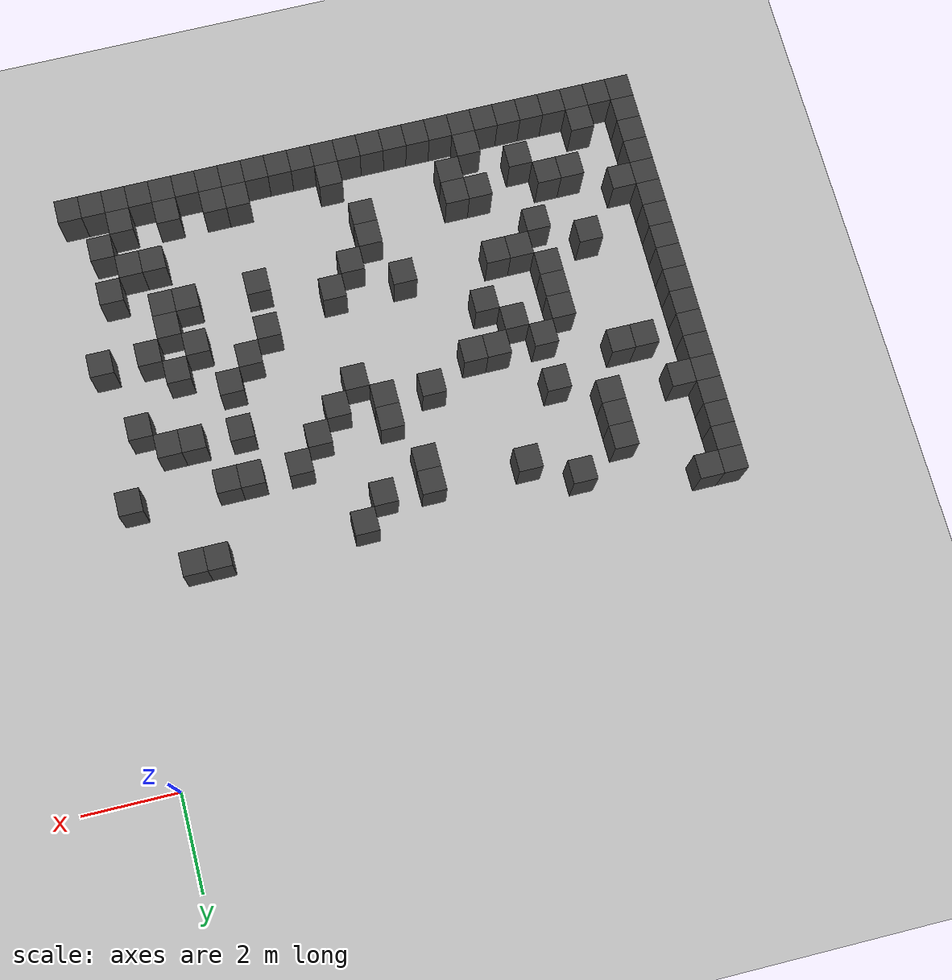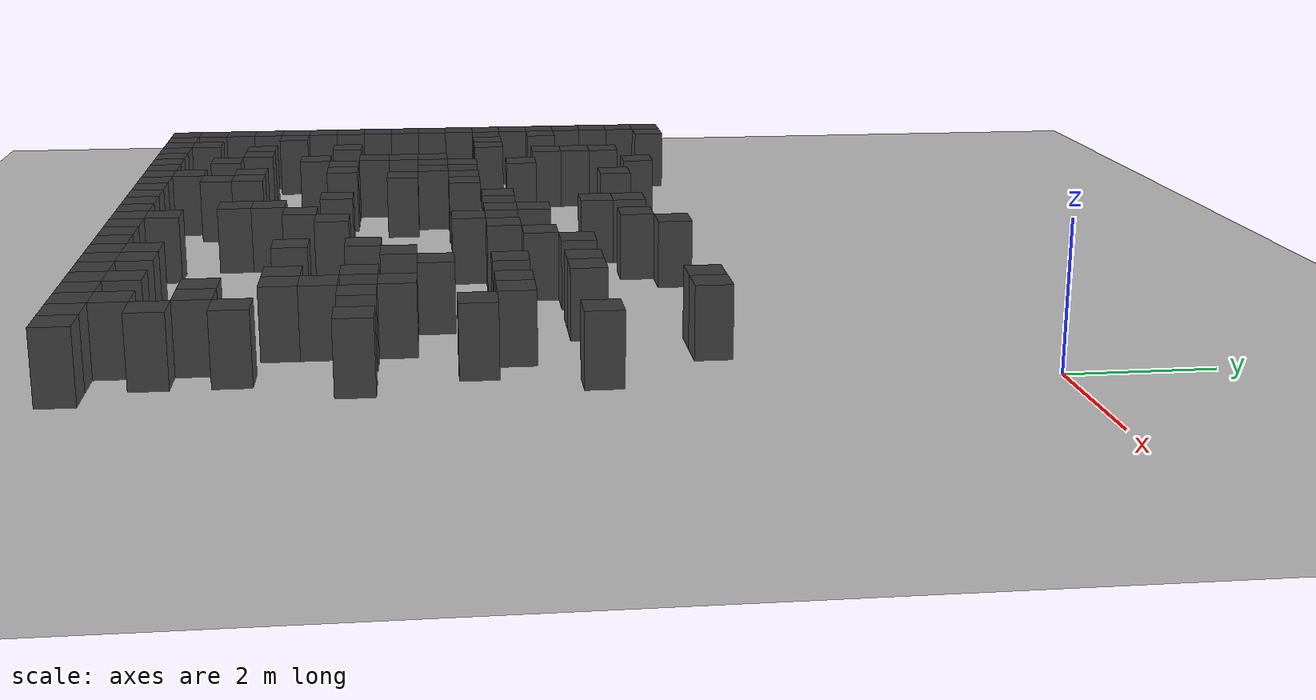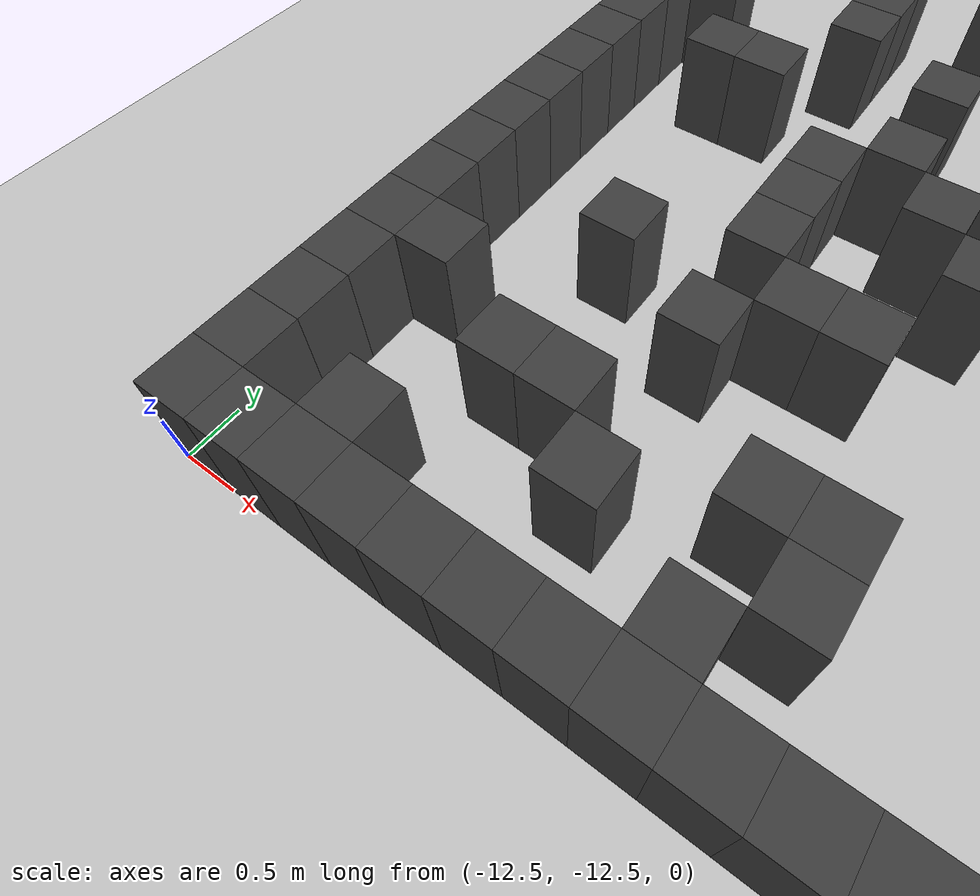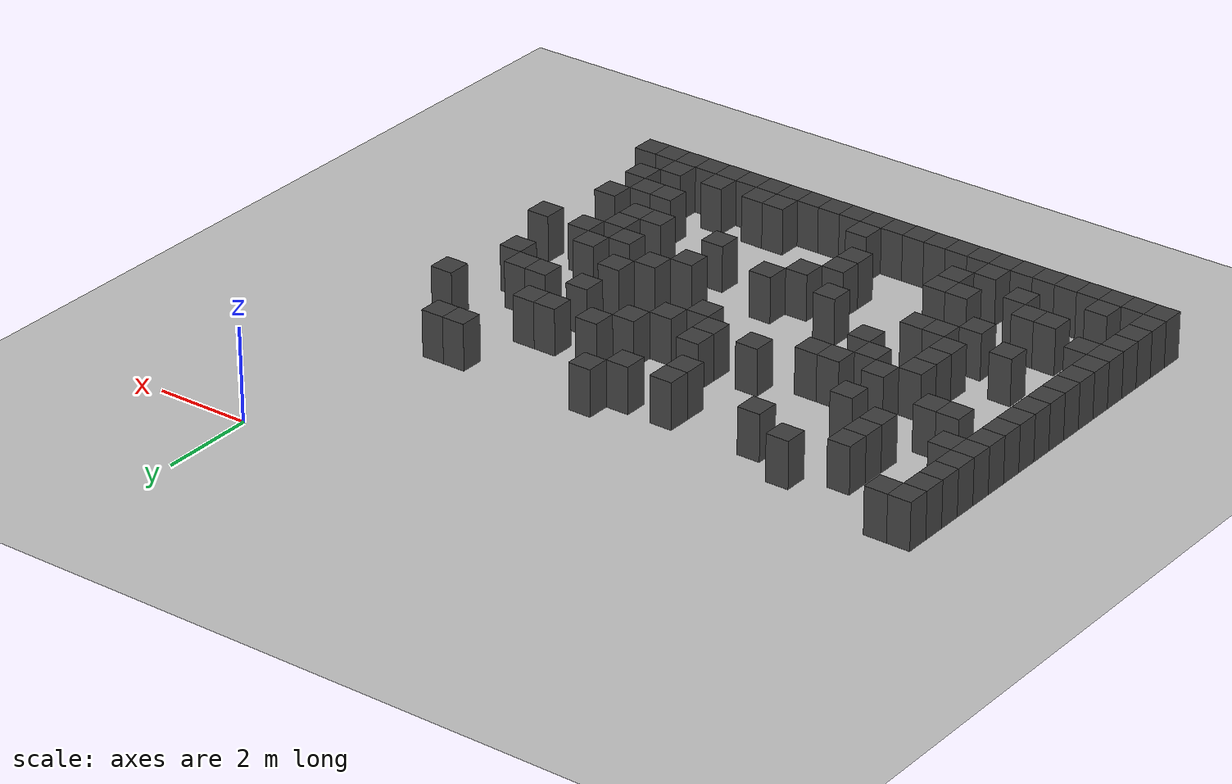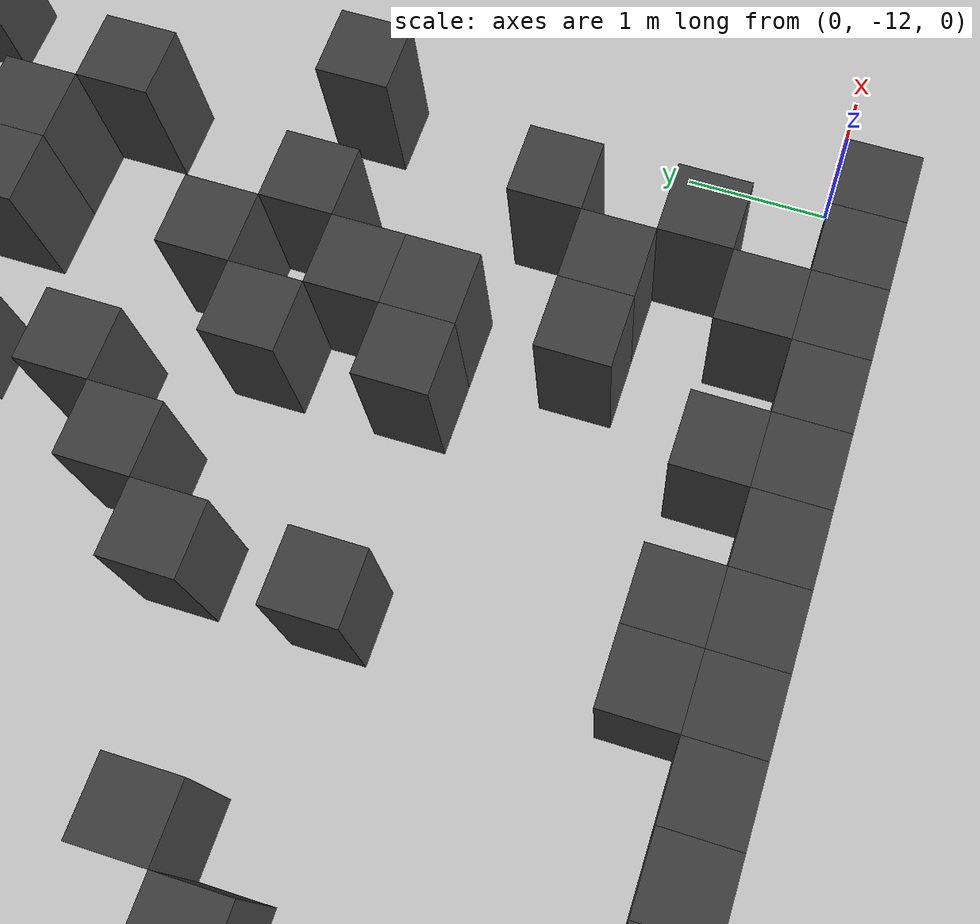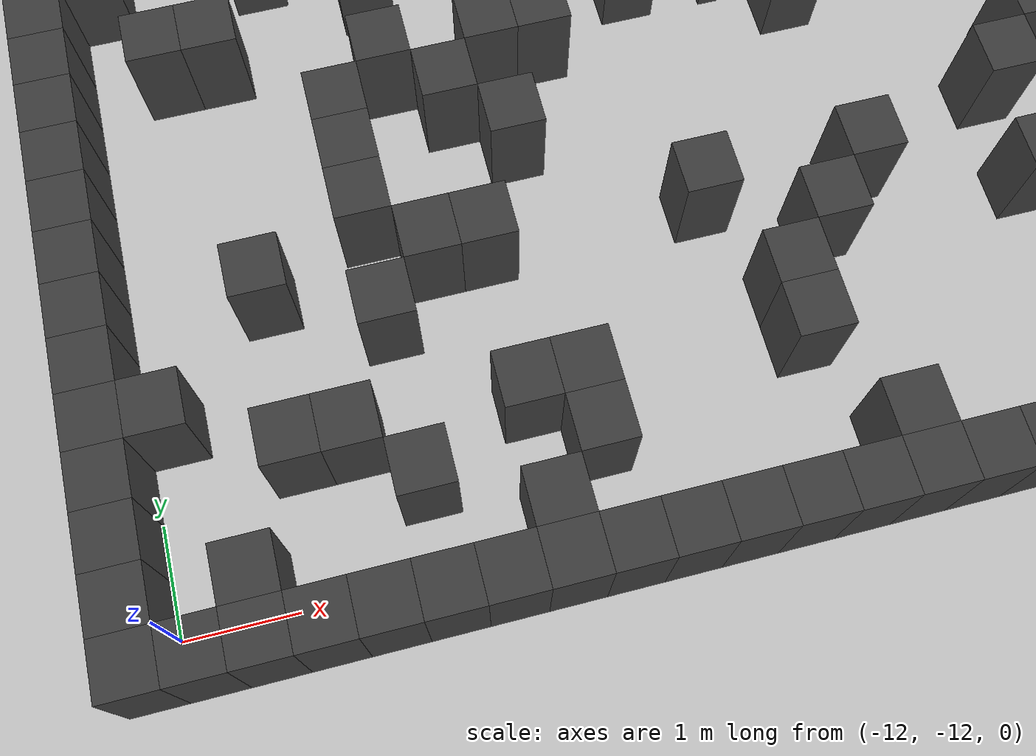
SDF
<sdf version="1.7">
 <world name="map_4682">
  <model name="ground_plane">
   <static>true</static>
   <link name="link">
    <collision name="collision">
     <geometry><plane><normal>0 0 1</normal><size>200 200</size></plane></geometry>
    </collision>
    <visual name="visual">
     <geometry><plane><normal>0 0 1</normal><size>200 200</size></plane></geometry>
     <material><ambient>0.8 0.8 0.8 1</ambient><diffuse>0.8 0.8 0.8 1</diffuse></material>
    </visual>
   </link>
  </model>
  <model name="maze_environment">
   <static>true</static>
   <link name="wall_447">
    <pose>-12.250 -3.750 0.500 0 0 0</pose>
    <collision name="col"><geometry><box><size>0.5 0.5 1.0</size></box></geometry></collision>
    <visual name="vis">
     <geometry><box><size>0.5 0.5 1.0</size></box></geometry>
     <material><ambient>0.15 0.15 0.15 1</ambient><diffuse>0.25 0.25 0.25 1</diffuse></material>
    </visual>
   </link>
   <link name="wall_448">
    <pose>-11.750 -3.750 0.500 0 0 0</pose>
    <collision name="col"><geometry><box><size>0.5 0.5 1.0</size></box></geometry></collision>
    <visual name="vis">
     <geometry><box><size>0.5 0.5 1.0</size></box></geometry>
     <material><ambient>0.15 0.15 0.15 1</ambient><diffuse>0.25 0.25 0.25 1</diffuse></material>
    </visual>
   </link>
   <link name="wall_467">
    <pose>-12.250 -4.250 0.500 0 0 0</pose>
    <collision name="col"><geometry><box><size>0.5 0.5 1.0</size></box></geometry></collision>
    <visual name="vis">
     <geometry><box><size>0.5 0.5 1.0</size></box></geometry>
     <material><ambient>0.15 0.15 0.15 1</ambient><diffuse>0.25 0.25 0.25 1</diffuse></material>
    </visual>
   </link>
   <link name="wall_468">
    <pose>-9.250 -4.250 0.500 0 0 0</pose>
    <collision name="col"><geometry><box><size>0.5 0.5 1.0</size></box></geometry></collision>
    <visual name="vis">
     <geometry><box><size>0.5 0.5 1.0</size></box></geometry>
     <material><ambient>0.15 0.15 0.15 1</ambient><diffuse>0.25 0.25 0.25 1</diffuse></material>
    </visual>
   </link>
   <link name="wall_469">
    <pose>-4.750 -4.250 0.500 0 0 0</pose>
    <collision name="col"><geometry><box><size>0.5 0.5 1.0</size></box></geometry></collision>
    <visual name="vis">
     <geometry><box><size>0.5 0.5 1.0</size></box></geometry>
     <material><ambient>0.15 0.15 0.15 1</ambient><diffuse>0.25 0.25 0.25 1</diffuse></material>
    </visual>
   </link>
   <link name="wall_470">
    <pose>-1.750 -4.250 0.500 0 0 0</pose>
    <collision name="col"><geometry><box><size>0.5 0.5 1.0</size></box></geometry></collision>
    <visual name="vis">
     <geometry><box><size>0.5 0.5 1.0</size></box></geometry>
     <material><ambient>0.15 0.15 0.15 1</ambient><diffuse>0.25 0.25 0.25 1</diffuse></material>
    </visual>
   </link>
   <link name="wall_471">
    <pose>-1.250 -4.250 0.500 0 0 0</pose>
    <collision name="col"><geometry><box><size>0.5 0.5 1.0</size></box></geometry></collision>
    <visual name="vis">
     <geometry><box><size>0.5 0.5 1.0</size></box></geometry>
     <material><ambient>0.15 0.15 0.15 1</ambient><diffuse>0.25 0.25 0.25 1</diffuse></material>
    </visual>
   </link>
   <link name="wall_479">
    <pose>-12.250 -4.750 0.500 0 0 0</pose>
    <collision name="col"><geometry><box><size>0.5 0.5 1.0</size></box></geometry></collision>
    <visual name="vis">
     <geometry><box><size>0.5 0.5 1.0</size></box></geometry>
     <material><ambient>0.15 0.15 0.15 1</ambient><diffuse>0.25 0.25 0.25 1</diffuse></material>
    </visual>
   </link>
   <link name="wall_480">
    <pose>-10.250 -4.750 0.500 0 0 0</pose>
    <collision name="col"><geometry><box><size>0.5 0.5 1.0</size></box></geometry></collision>
    <visual name="vis">
     <geometry><box><size>0.5 0.5 1.0</size></box></geometry>
     <material><ambient>0.15 0.15 0.15 1</ambient><diffuse>0.25 0.25 0.25 1</diffuse></material>
    </visual>
   </link>
   <link name="wall_481">
    <pose>-8.250 -4.750 0.500 0 0 0</pose>
    <collision name="col"><geometry><box><size>0.5 0.5 1.0</size></box></geometry></collision>
    <visual name="vis">
     <geometry><box><size>0.5 0.5 1.0</size></box></geometry>
     <material><ambient>0.15 0.15 0.15 1</ambient><diffuse>0.25 0.25 0.25 1</diffuse></material>
    </visual>
   </link>
   <link name="wall_482">
    <pose>-6.250 -4.750 0.500 0 0 0</pose>
    <collision name="col"><geometry><box><size>0.5 0.5 1.0</size></box></geometry></collision>
    <visual name="vis">
     <geometry><box><size>0.5 0.5 1.0</size></box></geometry>
     <material><ambient>0.15 0.15 0.15 1</ambient><diffuse>0.25 0.25 0.25 1</diffuse></material>
    </visual>
   </link>
   <link name="wall_483">
    <pose>-5.250 -4.750 0.500 0 0 0</pose>
    <collision name="col"><geometry><box><size>0.5 0.5 1.0</size></box></geometry></collision>
    <visual name="vis">
     <geometry><box><size>0.5 0.5 1.0</size></box></geometry>
     <material><ambient>0.15 0.15 0.15 1</ambient><diffuse>0.25 0.25 0.25 1</diffuse></material>
    </visual>
   </link>
   <link name="wall_491">
    <pose>-12.250 -5.250 0.500 0 0 0</pose>
    <collision name="col"><geometry><box><size>0.5 0.5 1.0</size></box></geometry></collision>
    <visual name="vis">
     <geometry><box><size>0.5 0.5 1.0</size></box></geometry>
     <material><ambient>0.15 0.15 0.15 1</ambient><diffuse>0.25 0.25 0.25 1</diffuse></material>
    </visual>
   </link>
   <link name="wall_492">
    <pose>-10.250 -5.250 0.500 0 0 0</pose>
    <collision name="col"><geometry><box><size>0.5 0.5 1.0</size></box></geometry></collision>
    <visual name="vis">
     <geometry><box><size>0.5 0.5 1.0</size></box></geometry>
     <material><ambient>0.15 0.15 0.15 1</ambient><diffuse>0.25 0.25 0.25 1</diffuse></material>
    </visual>
   </link>
   <link name="wall_493">
    <pose>-6.250 -5.250 0.500 0 0 0</pose>
    <collision name="col"><geometry><box><size>0.5 0.5 1.0</size></box></geometry></collision>
    <visual name="vis">
     <geometry><box><size>0.5 0.5 1.0</size></box></geometry>
     <material><ambient>0.15 0.15 0.15 1</ambient><diffuse>0.25 0.25 0.25 1</diffuse></material>
    </visual>
   </link>
   <link name="wall_500">
    <pose>-12.250 -5.750 0.500 0 0 0</pose>
    <collision name="col"><geometry><box><size>0.5 0.5 1.0</size></box></geometry></collision>
    <visual name="vis">
     <geometry><box><size>0.5 0.5 1.0</size></box></geometry>
     <material><ambient>0.15 0.15 0.15 1</ambient><diffuse>0.25 0.25 0.25 1</diffuse></material>
    </visual>
   </link>
   <link name="wall_501">
    <pose>-11.750 -5.750 0.500 0 0 0</pose>
    <collision name="col"><geometry><box><size>0.5 0.5 1.0</size></box></geometry></collision>
    <visual name="vis">
     <geometry><box><size>0.5 0.5 1.0</size></box></geometry>
     <material><ambient>0.15 0.15 0.15 1</ambient><diffuse>0.25 0.25 0.25 1</diffuse></material>
    </visual>
   </link>
   <link name="wall_502">
    <pose>-10.250 -5.750 0.500 0 0 0</pose>
    <collision name="col"><geometry><box><size>0.5 0.5 1.0</size></box></geometry></collision>
    <visual name="vis">
     <geometry><box><size>0.5 0.5 1.0</size></box></geometry>
     <material><ambient>0.15 0.15 0.15 1</ambient><diffuse>0.25 0.25 0.25 1</diffuse></material>
    </visual>
   </link>
   <link name="wall_503">
    <pose>-3.750 -5.750 0.500 0 0 0</pose>
    <collision name="col"><geometry><box><size>0.5 0.5 1.0</size></box></geometry></collision>
    <visual name="vis">
     <geometry><box><size>0.5 0.5 1.0</size></box></geometry>
     <material><ambient>0.15 0.15 0.15 1</ambient><diffuse>0.25 0.25 0.25 1</diffuse></material>
    </visual>
   </link>
   <link name="wall_504">
    <pose>-2.750 -5.750 0.500 0 0 0</pose>
    <collision name="col"><geometry><box><size>0.5 0.5 1.0</size></box></geometry></collision>
    <visual name="vis">
     <geometry><box><size>0.5 0.5 1.0</size></box></geometry>
     <material><ambient>0.15 0.15 0.15 1</ambient><diffuse>0.25 0.25 0.25 1</diffuse></material>
    </visual>
   </link>
   <link name="wall_505">
    <pose>-2.250 -5.750 0.500 0 0 0</pose>
    <collision name="col"><geometry><box><size>0.5 0.5 1.0</size></box></geometry></collision>
    <visual name="vis">
     <geometry><box><size>0.5 0.5 1.0</size></box></geometry>
     <material><ambient>0.15 0.15 0.15 1</ambient><diffuse>0.25 0.25 0.25 1</diffuse></material>
    </visual>
   </link>
   <link name="wall_506">
    <pose>-0.250 -5.750 0.500 0 0 0</pose>
    <collision name="col"><geometry><box><size>0.5 0.5 1.0</size></box></geometry></collision>
    <visual name="vis">
     <geometry><box><size>0.5 0.5 1.0</size></box></geometry>
     <material><ambient>0.15 0.15 0.15 1</ambient><diffuse>0.25 0.25 0.25 1</diffuse></material>
    </visual>
   </link>
   <link name="wall_515">
    <pose>-12.250 -6.250 0.500 0 0 0</pose>
    <collision name="col"><geometry><box><size>0.5 0.5 1.0</size></box></geometry></collision>
    <visual name="vis">
     <geometry><box><size>0.5 0.5 1.0</size></box></geometry>
     <material><ambient>0.15 0.15 0.15 1</ambient><diffuse>0.25 0.25 0.25 1</diffuse></material>
    </visual>
   </link>
   <link name="wall_516">
    <pose>-9.250 -6.250 0.500 0 0 0</pose>
    <collision name="col"><geometry><box><size>0.5 0.5 1.0</size></box></geometry></collision>
    <visual name="vis">
     <geometry><box><size>0.5 0.5 1.0</size></box></geometry>
     <material><ambient>0.15 0.15 0.15 1</ambient><diffuse>0.25 0.25 0.25 1</diffuse></material>
    </visual>
   </link>
   <link name="wall_517">
    <pose>-5.750 -6.250 0.500 0 0 0</pose>
    <collision name="col"><geometry><box><size>0.5 0.5 1.0</size></box></geometry></collision>
    <visual name="vis">
     <geometry><box><size>0.5 0.5 1.0</size></box></geometry>
     <material><ambient>0.15 0.15 0.15 1</ambient><diffuse>0.25 0.25 0.25 1</diffuse></material>
    </visual>
   </link>
   <link name="wall_518">
    <pose>-4.250 -6.250 0.500 0 0 0</pose>
    <collision name="col"><geometry><box><size>0.5 0.5 1.0</size></box></geometry></collision>
    <visual name="vis">
     <geometry><box><size>0.5 0.5 1.0</size></box></geometry>
     <material><ambient>0.15 0.15 0.15 1</ambient><diffuse>0.25 0.25 0.25 1</diffuse></material>
    </visual>
   </link>
   <link name="wall_525">
    <pose>-12.250 -6.750 0.500 0 0 0</pose>
    <collision name="col"><geometry><box><size>0.5 0.5 1.0</size></box></geometry></collision>
    <visual name="vis">
     <geometry><box><size>0.5 0.5 1.0</size></box></geometry>
     <material><ambient>0.15 0.15 0.15 1</ambient><diffuse>0.25 0.25 0.25 1</diffuse></material>
    </visual>
   </link>
   <link name="wall_526">
    <pose>-11.250 -6.750 0.500 0 0 0</pose>
    <collision name="col"><geometry><box><size>0.5 0.5 1.0</size></box></geometry></collision>
    <visual name="vis">
     <geometry><box><size>0.5 0.5 1.0</size></box></geometry>
     <material><ambient>0.15 0.15 0.15 1</ambient><diffuse>0.25 0.25 0.25 1</diffuse></material>
    </visual>
   </link>
   <link name="wall_527">
    <pose>-10.750 -6.750 0.500 0 0 0</pose>
    <collision name="col"><geometry><box><size>0.5 0.5 1.0</size></box></geometry></collision>
    <visual name="vis">
     <geometry><box><size>0.5 0.5 1.0</size></box></geometry>
     <material><ambient>0.15 0.15 0.15 1</ambient><diffuse>0.25 0.25 0.25 1</diffuse></material>
    </visual>
   </link>
   <link name="wall_528">
    <pose>-6.750 -6.750 0.500 0 0 0</pose>
    <collision name="col"><geometry><box><size>0.5 0.5 1.0</size></box></geometry></collision>
    <visual name="vis">
     <geometry><box><size>0.5 0.5 1.0</size></box></geometry>
     <material><ambient>0.15 0.15 0.15 1</ambient><diffuse>0.25 0.25 0.25 1</diffuse></material>
    </visual>
   </link>
   <link name="wall_529">
    <pose>-5.750 -6.750 0.500 0 0 0</pose>
    <collision name="col"><geometry><box><size>0.5 0.5 1.0</size></box></geometry></collision>
    <visual name="vis">
     <geometry><box><size>0.5 0.5 1.0</size></box></geometry>
     <material><ambient>0.15 0.15 0.15 1</ambient><diffuse>0.25 0.25 0.25 1</diffuse></material>
    </visual>
   </link>
   <link name="wall_530">
    <pose>-4.750 -6.750 0.500 0 0 0</pose>
    <collision name="col"><geometry><box><size>0.5 0.5 1.0</size></box></geometry></collision>
    <visual name="vis">
     <geometry><box><size>0.5 0.5 1.0</size></box></geometry>
     <material><ambient>0.15 0.15 0.15 1</ambient><diffuse>0.25 0.25 0.25 1</diffuse></material>
    </visual>
   </link>
   <link name="wall_531">
    <pose>-2.750 -6.750 0.500 0 0 0</pose>
    <collision name="col"><geometry><box><size>0.5 0.5 1.0</size></box></geometry></collision>
    <visual name="vis">
     <geometry><box><size>0.5 0.5 1.0</size></box></geometry>
     <material><ambient>0.15 0.15 0.15 1</ambient><diffuse>0.25 0.25 0.25 1</diffuse></material>
    </visual>
   </link>
   <link name="wall_532">
    <pose>-1.750 -6.750 0.500 0 0 0</pose>
    <collision name="col"><geometry><box><size>0.5 0.5 1.0</size></box></geometry></collision>
    <visual name="vis">
     <geometry><box><size>0.5 0.5 1.0</size></box></geometry>
     <material><ambient>0.15 0.15 0.15 1</ambient><diffuse>0.25 0.25 0.25 1</diffuse></material>
    </visual>
   </link>
   <link name="wall_533">
    <pose>-1.250 -6.750 0.500 0 0 0</pose>
    <collision name="col"><geometry><box><size>0.5 0.5 1.0</size></box></geometry></collision>
    <visual name="vis">
     <geometry><box><size>0.5 0.5 1.0</size></box></geometry>
     <material><ambient>0.15 0.15 0.15 1</ambient><diffuse>0.25 0.25 0.25 1</diffuse></material>
    </visual>
   </link>
   <link name="wall_545">
    <pose>-12.250 -7.250 0.500 0 0 0</pose>
    <collision name="col"><geometry><box><size>0.5 0.5 1.0</size></box></geometry></collision>
    <visual name="vis">
     <geometry><box><size>0.5 0.5 1.0</size></box></geometry>
     <material><ambient>0.15 0.15 0.15 1</ambient><diffuse>0.25 0.25 0.25 1</diffuse></material>
    </visual>
   </link>
   <link name="wall_546">
    <pose>-9.250 -7.250 0.500 0 0 0</pose>
    <collision name="col"><geometry><box><size>0.5 0.5 1.0</size></box></geometry></collision>
    <visual name="vis">
     <geometry><box><size>0.5 0.5 1.0</size></box></geometry>
     <material><ambient>0.15 0.15 0.15 1</ambient><diffuse>0.25 0.25 0.25 1</diffuse></material>
    </visual>
   </link>
   <link name="wall_547">
    <pose>-8.250 -7.250 0.500 0 0 0</pose>
    <collision name="col"><geometry><box><size>0.5 0.5 1.0</size></box></geometry></collision>
    <visual name="vis">
     <geometry><box><size>0.5 0.5 1.0</size></box></geometry>
     <material><ambient>0.15 0.15 0.15 1</ambient><diffuse>0.25 0.25 0.25 1</diffuse></material>
    </visual>
   </link>
   <link name="wall_548">
    <pose>-7.750 -7.250 0.500 0 0 0</pose>
    <collision name="col"><geometry><box><size>0.5 0.5 1.0</size></box></geometry></collision>
    <visual name="vis">
     <geometry><box><size>0.5 0.5 1.0</size></box></geometry>
     <material><ambient>0.15 0.15 0.15 1</ambient><diffuse>0.25 0.25 0.25 1</diffuse></material>
    </visual>
   </link>
   <link name="wall_549">
    <pose>-5.250 -7.250 0.500 0 0 0</pose>
    <collision name="col"><geometry><box><size>0.5 0.5 1.0</size></box></geometry></collision>
    <visual name="vis">
     <geometry><box><size>0.5 0.5 1.0</size></box></geometry>
     <material><ambient>0.15 0.15 0.15 1</ambient><diffuse>0.25 0.25 0.25 1</diffuse></material>
    </visual>
   </link>
   <link name="wall_550">
    <pose>-0.750 -7.250 0.500 0 0 0</pose>
    <collision name="col"><geometry><box><size>0.5 0.5 1.0</size></box></geometry></collision>
    <visual name="vis">
     <geometry><box><size>0.5 0.5 1.0</size></box></geometry>
     <material><ambient>0.15 0.15 0.15 1</ambient><diffuse>0.25 0.25 0.25 1</diffuse></material>
    </visual>
   </link>
   <link name="wall_557">
    <pose>-12.250 -7.750 0.500 0 0 0</pose>
    <collision name="col"><geometry><box><size>0.5 0.5 1.0</size></box></geometry></collision>
    <visual name="vis">
     <geometry><box><size>0.5 0.5 1.0</size></box></geometry>
     <material><ambient>0.15 0.15 0.15 1</ambient><diffuse>0.25 0.25 0.25 1</diffuse></material>
    </visual>
   </link>
   <link name="wall_558">
    <pose>-9.750 -7.750 0.500 0 0 0</pose>
    <collision name="col"><geometry><box><size>0.5 0.5 1.0</size></box></geometry></collision>
    <visual name="vis">
     <geometry><box><size>0.5 0.5 1.0</size></box></geometry>
     <material><ambient>0.15 0.15 0.15 1</ambient><diffuse>0.25 0.25 0.25 1</diffuse></material>
    </visual>
   </link>
   <link name="wall_559">
    <pose>-8.750 -7.750 0.500 0 0 0</pose>
    <collision name="col"><geometry><box><size>0.5 0.5 1.0</size></box></geometry></collision>
    <visual name="vis">
     <geometry><box><size>0.5 0.5 1.0</size></box></geometry>
     <material><ambient>0.15 0.15 0.15 1</ambient><diffuse>0.25 0.25 0.25 1</diffuse></material>
    </visual>
   </link>
   <link name="wall_560">
    <pose>-2.750 -7.750 0.500 0 0 0</pose>
    <collision name="col"><geometry><box><size>0.5 0.5 1.0</size></box></geometry></collision>
    <visual name="vis">
     <geometry><box><size>0.5 0.5 1.0</size></box></geometry>
     <material><ambient>0.15 0.15 0.15 1</ambient><diffuse>0.25 0.25 0.25 1</diffuse></material>
    </visual>
   </link>
   <link name="wall_570">
    <pose>-12.250 -8.250 0.500 0 0 0</pose>
    <collision name="col"><geometry><box><size>0.5 0.5 1.0</size></box></geometry></collision>
    <visual name="vis">
     <geometry><box><size>0.5 0.5 1.0</size></box></geometry>
     <material><ambient>0.15 0.15 0.15 1</ambient><diffuse>0.25 0.25 0.25 1</diffuse></material>
    </visual>
   </link>
   <link name="wall_571">
    <pose>-9.750 -8.250 0.500 0 0 0</pose>
    <collision name="col"><geometry><box><size>0.5 0.5 1.0</size></box></geometry></collision>
    <visual name="vis">
     <geometry><box><size>0.5 0.5 1.0</size></box></geometry>
     <material><ambient>0.15 0.15 0.15 1</ambient><diffuse>0.25 0.25 0.25 1</diffuse></material>
    </visual>
   </link>
   <link name="wall_572">
    <pose>-8.250 -8.250 0.500 0 0 0</pose>
    <collision name="col"><geometry><box><size>0.5 0.5 1.0</size></box></geometry></collision>
    <visual name="vis">
     <geometry><box><size>0.5 0.5 1.0</size></box></geometry>
     <material><ambient>0.15 0.15 0.15 1</ambient><diffuse>0.25 0.25 0.25 1</diffuse></material>
    </visual>
   </link>
   <link name="wall_573">
    <pose>-3.250 -8.250 0.500 0 0 0</pose>
    <collision name="col"><geometry><box><size>0.5 0.5 1.0</size></box></geometry></collision>
    <visual name="vis">
     <geometry><box><size>0.5 0.5 1.0</size></box></geometry>
     <material><ambient>0.15 0.15 0.15 1</ambient><diffuse>0.25 0.25 0.25 1</diffuse></material>
    </visual>
   </link>
   <link name="wall_574">
    <pose>-1.750 -8.250 0.500 0 0 0</pose>
    <collision name="col"><geometry><box><size>0.5 0.5 1.0</size></box></geometry></collision>
    <visual name="vis">
     <geometry><box><size>0.5 0.5 1.0</size></box></geometry>
     <material><ambient>0.15 0.15 0.15 1</ambient><diffuse>0.25 0.25 0.25 1</diffuse></material>
    </visual>
   </link>
   <link name="wall_581">
    <pose>-12.250 -8.750 0.500 0 0 0</pose>
    <collision name="col"><geometry><box><size>0.5 0.5 1.0</size></box></geometry></collision>
    <visual name="vis">
     <geometry><box><size>0.5 0.5 1.0</size></box></geometry>
     <material><ambient>0.15 0.15 0.15 1</ambient><diffuse>0.25 0.25 0.25 1</diffuse></material>
    </visual>
   </link>
   <link name="wall_582">
    <pose>-9.750 -8.750 0.500 0 0 0</pose>
    <collision name="col"><geometry><box><size>0.5 0.5 1.0</size></box></geometry></collision>
    <visual name="vis">
     <geometry><box><size>0.5 0.5 1.0</size></box></geometry>
     <material><ambient>0.15 0.15 0.15 1</ambient><diffuse>0.25 0.25 0.25 1</diffuse></material>
    </visual>
   </link>
   <link name="wall_583">
    <pose>-3.750 -8.750 0.500 0 0 0</pose>
    <collision name="col"><geometry><box><size>0.5 0.5 1.0</size></box></geometry></collision>
    <visual name="vis">
     <geometry><box><size>0.5 0.5 1.0</size></box></geometry>
     <material><ambient>0.15 0.15 0.15 1</ambient><diffuse>0.25 0.25 0.25 1</diffuse></material>
    </visual>
   </link>
   <link name="wall_584">
    <pose>-2.250 -8.750 0.500 0 0 0</pose>
    <collision name="col"><geometry><box><size>0.5 0.5 1.0</size></box></geometry></collision>
    <visual name="vis">
     <geometry><box><size>0.5 0.5 1.0</size></box></geometry>
     <material><ambient>0.15 0.15 0.15 1</ambient><diffuse>0.25 0.25 0.25 1</diffuse></material>
    </visual>
   </link>
   <link name="wall_585">
    <pose>-1.250 -8.750 0.500 0 0 0</pose>
    <collision name="col"><geometry><box><size>0.5 0.5 1.0</size></box></geometry></collision>
    <visual name="vis">
     <geometry><box><size>0.5 0.5 1.0</size></box></geometry>
     <material><ambient>0.15 0.15 0.15 1</ambient><diffuse>0.25 0.25 0.25 1</diffuse></material>
    </visual>
   </link>
   <link name="wall_586">
    <pose>-0.250 -8.750 0.500 0 0 0</pose>
    <collision name="col"><geometry><box><size>0.5 0.5 1.0</size></box></geometry></collision>
    <visual name="vis">
     <geometry><box><size>0.5 0.5 1.0</size></box></geometry>
     <material><ambient>0.15 0.15 0.15 1</ambient><diffuse>0.25 0.25 0.25 1</diffuse></material>
    </visual>
   </link>
   <link name="wall_593">
    <pose>-12.250 -9.250 0.500 0 0 0</pose>
    <collision name="col"><geometry><box><size>0.5 0.5 1.0</size></box></geometry></collision>
    <visual name="vis">
     <geometry><box><size>0.5 0.5 1.0</size></box></geometry>
     <material><ambient>0.15 0.15 0.15 1</ambient><diffuse>0.25 0.25 0.25 1</diffuse></material>
    </visual>
   </link>
   <link name="wall_594">
    <pose>-10.750 -9.250 0.500 0 0 0</pose>
    <collision name="col"><geometry><box><size>0.5 0.5 1.0</size></box></geometry></collision>
    <visual name="vis">
     <geometry><box><size>0.5 0.5 1.0</size></box></geometry>
     <material><ambient>0.15 0.15 0.15 1</ambient><diffuse>0.25 0.25 0.25 1</diffuse></material>
    </visual>
   </link>
   <link name="wall_595">
    <pose>-9.250 -9.250 0.500 0 0 0</pose>
    <collision name="col"><geometry><box><size>0.5 0.5 1.0</size></box></geometry></collision>
    <visual name="vis">
     <geometry><box><size>0.5 0.5 1.0</size></box></geometry>
     <material><ambient>0.15 0.15 0.15 1</ambient><diffuse>0.25 0.25 0.25 1</diffuse></material>
    </visual>
   </link>
   <link name="wall_596">
    <pose>-8.750 -9.250 0.500 0 0 0</pose>
    <collision name="col"><geometry><box><size>0.5 0.5 1.0</size></box></geometry></collision>
    <visual name="vis">
     <geometry><box><size>0.5 0.5 1.0</size></box></geometry>
     <material><ambient>0.15 0.15 0.15 1</ambient><diffuse>0.25 0.25 0.25 1</diffuse></material>
    </visual>
   </link>
   <link name="wall_597">
    <pose>-6.750 -9.250 0.500 0 0 0</pose>
    <collision name="col"><geometry><box><size>0.5 0.5 1.0</size></box></geometry></collision>
    <visual name="vis">
     <geometry><box><size>0.5 0.5 1.0</size></box></geometry>
     <material><ambient>0.15 0.15 0.15 1</ambient><diffuse>0.25 0.25 0.25 1</diffuse></material>
    </visual>
   </link>
   <link name="wall_598">
    <pose>-5.250 -9.250 0.500 0 0 0</pose>
    <collision name="col"><geometry><box><size>0.5 0.5 1.0</size></box></geometry></collision>
    <visual name="vis">
     <geometry><box><size>0.5 0.5 1.0</size></box></geometry>
     <material><ambient>0.15 0.15 0.15 1</ambient><diffuse>0.25 0.25 0.25 1</diffuse></material>
    </visual>
   </link>
   <link name="wall_599">
    <pose>-1.750 -9.250 0.500 0 0 0</pose>
    <collision name="col"><geometry><box><size>0.5 0.5 1.0</size></box></geometry></collision>
    <visual name="vis">
     <geometry><box><size>0.5 0.5 1.0</size></box></geometry>
     <material><ambient>0.15 0.15 0.15 1</ambient><diffuse>0.25 0.25 0.25 1</diffuse></material>
    </visual>
   </link>
   <link name="wall_606">
    <pose>-12.250 -9.750 0.500 0 0 0</pose>
    <collision name="col"><geometry><box><size>0.5 0.5 1.0</size></box></geometry></collision>
    <visual name="vis">
     <geometry><box><size>0.5 0.5 1.0</size></box></geometry>
     <material><ambient>0.15 0.15 0.15 1</ambient><diffuse>0.25 0.25 0.25 1</diffuse></material>
    </visual>
   </link>
   <link name="wall_607">
    <pose>-9.750 -9.750 0.500 0 0 0</pose>
    <collision name="col"><geometry><box><size>0.5 0.5 1.0</size></box></geometry></collision>
    <visual name="vis">
     <geometry><box><size>0.5 0.5 1.0</size></box></geometry>
     <material><ambient>0.15 0.15 0.15 1</ambient><diffuse>0.25 0.25 0.25 1</diffuse></material>
    </visual>
   </link>
   <link name="wall_608">
    <pose>-5.750 -9.750 0.500 0 0 0</pose>
    <collision name="col"><geometry><box><size>0.5 0.5 1.0</size></box></geometry></collision>
    <visual name="vis">
     <geometry><box><size>0.5 0.5 1.0</size></box></geometry>
     <material><ambient>0.15 0.15 0.15 1</ambient><diffuse>0.25 0.25 0.25 1</diffuse></material>
    </visual>
   </link>
   <link name="wall_609">
    <pose>-3.750 -9.750 0.500 0 0 0</pose>
    <collision name="col"><geometry><box><size>0.5 0.5 1.0</size></box></geometry></collision>
    <visual name="vis">
     <geometry><box><size>0.5 0.5 1.0</size></box></geometry>
     <material><ambient>0.15 0.15 0.15 1</ambient><diffuse>0.25 0.25 0.25 1</diffuse></material>
    </visual>
   </link>
   <link name="wall_610">
    <pose>-2.250 -9.750 0.500 0 0 0</pose>
    <collision name="col"><geometry><box><size>0.5 0.5 1.0</size></box></geometry></collision>
    <visual name="vis">
     <geometry><box><size>0.5 0.5 1.0</size></box></geometry>
     <material><ambient>0.15 0.15 0.15 1</ambient><diffuse>0.25 0.25 0.25 1</diffuse></material>
    </visual>
   </link>
   <link name="wall_611">
    <pose>-1.750 -9.750 0.500 0 0 0</pose>
    <collision name="col"><geometry><box><size>0.5 0.5 1.0</size></box></geometry></collision>
    <visual name="vis">
     <geometry><box><size>0.5 0.5 1.0</size></box></geometry>
     <material><ambient>0.15 0.15 0.15 1</ambient><diffuse>0.25 0.25 0.25 1</diffuse></material>
    </visual>
   </link>
   <link name="wall_616">
    <pose>-12.250 -10.250 0.500 0 0 0</pose>
    <collision name="col"><geometry><box><size>0.5 0.5 1.0</size></box></geometry></collision>
    <visual name="vis">
     <geometry><box><size>0.5 0.5 1.0</size></box></geometry>
     <material><ambient>0.15 0.15 0.15 1</ambient><diffuse>0.25 0.25 0.25 1</diffuse></material>
    </visual>
   </link>
   <link name="wall_617">
    <pose>-11.750 -10.250 0.500 0 0 0</pose>
    <collision name="col"><geometry><box><size>0.5 0.5 1.0</size></box></geometry></collision>
    <visual name="vis">
     <geometry><box><size>0.5 0.5 1.0</size></box></geometry>
     <material><ambient>0.15 0.15 0.15 1</ambient><diffuse>0.25 0.25 0.25 1</diffuse></material>
    </visual>
   </link>
   <link name="wall_618">
    <pose>-6.250 -10.250 0.500 0 0 0</pose>
    <collision name="col"><geometry><box><size>0.5 0.5 1.0</size></box></geometry></collision>
    <visual name="vis">
     <geometry><box><size>0.5 0.5 1.0</size></box></geometry>
     <material><ambient>0.15 0.15 0.15 1</ambient><diffuse>0.25 0.25 0.25 1</diffuse></material>
    </visual>
   </link>
   <link name="wall_619">
    <pose>-0.750 -10.250 0.500 0 0 0</pose>
    <collision name="col"><geometry><box><size>0.5 0.5 1.0</size></box></geometry></collision>
    <visual name="vis">
     <geometry><box><size>0.5 0.5 1.0</size></box></geometry>
     <material><ambient>0.15 0.15 0.15 1</ambient><diffuse>0.25 0.25 0.25 1</diffuse></material>
    </visual>
   </link>
   <link name="wall_627">
    <pose>-12.250 -10.750 0.500 0 0 0</pose>
    <collision name="col"><geometry><box><size>0.5 0.5 1.0</size></box></geometry></collision>
    <visual name="vis">
     <geometry><box><size>0.5 0.5 1.0</size></box></geometry>
     <material><ambient>0.15 0.15 0.15 1</ambient><diffuse>0.25 0.25 0.25 1</diffuse></material>
    </visual>
   </link>
   <link name="wall_628">
    <pose>-10.750 -10.750 0.500 0 0 0</pose>
    <collision name="col"><geometry><box><size>0.5 0.5 1.0</size></box></geometry></collision>
    <visual name="vis">
     <geometry><box><size>0.5 0.5 1.0</size></box></geometry>
     <material><ambient>0.15 0.15 0.15 1</ambient><diffuse>0.25 0.25 0.25 1</diffuse></material>
    </visual>
   </link>
   <link name="wall_629">
    <pose>-10.250 -10.750 0.500 0 0 0</pose>
    <collision name="col"><geometry><box><size>0.5 0.5 1.0</size></box></geometry></collision>
    <visual name="vis">
     <geometry><box><size>0.5 0.5 1.0</size></box></geometry>
     <material><ambient>0.15 0.15 0.15 1</ambient><diffuse>0.25 0.25 0.25 1</diffuse></material>
    </visual>
   </link>
   <link name="wall_630">
    <pose>-8.750 -10.750 0.500 0 0 0</pose>
    <collision name="col"><geometry><box><size>0.5 0.5 1.0</size></box></geometry></collision>
    <visual name="vis">
     <geometry><box><size>0.5 0.5 1.0</size></box></geometry>
     <material><ambient>0.15 0.15 0.15 1</ambient><diffuse>0.25 0.25 0.25 1</diffuse></material>
    </visual>
   </link>
   <link name="wall_631">
    <pose>-8.250 -10.750 0.500 0 0 0</pose>
    <collision name="col"><geometry><box><size>0.5 0.5 1.0</size></box></geometry></collision>
    <visual name="vis">
     <geometry><box><size>0.5 0.5 1.0</size></box></geometry>
     <material><ambient>0.15 0.15 0.15 1</ambient><diffuse>0.25 0.25 0.25 1</diffuse></material>
    </visual>
   </link>
   <link name="wall_632">
    <pose>-6.250 -10.750 0.500 0 0 0</pose>
    <collision name="col"><geometry><box><size>0.5 0.5 1.0</size></box></geometry></collision>
    <visual name="vis">
     <geometry><box><size>0.5 0.5 1.0</size></box></geometry>
     <material><ambient>0.15 0.15 0.15 1</ambient><diffuse>0.25 0.25 0.25 1</diffuse></material>
    </visual>
   </link>
   <link name="wall_633">
    <pose>-1.750 -10.750 0.500 0 0 0</pose>
    <collision name="col"><geometry><box><size>0.5 0.5 1.0</size></box></geometry></collision>
    <visual name="vis">
     <geometry><box><size>0.5 0.5 1.0</size></box></geometry>
     <material><ambient>0.15 0.15 0.15 1</ambient><diffuse>0.25 0.25 0.25 1</diffuse></material>
    </visual>
   </link>
   <link name="wall_634">
    <pose>-1.250 -10.750 0.500 0 0 0</pose>
    <collision name="col"><geometry><box><size>0.5 0.5 1.0</size></box></geometry></collision>
    <visual name="vis">
     <geometry><box><size>0.5 0.5 1.0</size></box></geometry>
     <material><ambient>0.15 0.15 0.15 1</ambient><diffuse>0.25 0.25 0.25 1</diffuse></material>
    </visual>
   </link>
   <link name="wall_642">
    <pose>-12.250 -11.250 0.500 0 0 0</pose>
    <collision name="col"><geometry><box><size>0.5 0.5 1.0</size></box></geometry></collision>
    <visual name="vis">
     <geometry><box><size>0.5 0.5 1.0</size></box></geometry>
     <material><ambient>0.15 0.15 0.15 1</ambient><diffuse>0.25 0.25 0.25 1</diffuse></material>
    </visual>
   </link>
   <link name="wall_643">
    <pose>-9.750 -11.250 0.500 0 0 0</pose>
    <collision name="col"><geometry><box><size>0.5 0.5 1.0</size></box></geometry></collision>
    <visual name="vis">
     <geometry><box><size>0.5 0.5 1.0</size></box></geometry>
     <material><ambient>0.15 0.15 0.15 1</ambient><diffuse>0.25 0.25 0.25 1</diffuse></material>
    </visual>
   </link>
   <link name="wall_644">
    <pose>-8.250 -11.250 0.500 0 0 0</pose>
    <collision name="col"><geometry><box><size>0.5 0.5 1.0</size></box></geometry></collision>
    <visual name="vis">
     <geometry><box><size>0.5 0.5 1.0</size></box></geometry>
     <material><ambient>0.15 0.15 0.15 1</ambient><diffuse>0.25 0.25 0.25 1</diffuse></material>
    </visual>
   </link>
   <link name="wall_645">
    <pose>-0.750 -11.250 0.500 0 0 0</pose>
    <collision name="col"><geometry><box><size>0.5 0.5 1.0</size></box></geometry></collision>
    <visual name="vis">
     <geometry><box><size>0.5 0.5 1.0</size></box></geometry>
     <material><ambient>0.15 0.15 0.15 1</ambient><diffuse>0.25 0.25 0.25 1</diffuse></material>
    </visual>
   </link>
   <link name="wall_649">
    <pose>-12.250 -11.750 0.500 0 0 0</pose>
    <collision name="col"><geometry><box><size>0.5 0.5 1.0</size></box></geometry></collision>
    <visual name="vis">
     <geometry><box><size>0.5 0.5 1.0</size></box></geometry>
     <material><ambient>0.15 0.15 0.15 1</ambient><diffuse>0.25 0.25 0.25 1</diffuse></material>
    </visual>
   </link>
   <link name="wall_650">
    <pose>-11.250 -11.750 0.500 0 0 0</pose>
    <collision name="col"><geometry><box><size>0.5 0.5 1.0</size></box></geometry></collision>
    <visual name="vis">
     <geometry><box><size>0.5 0.5 1.0</size></box></geometry>
     <material><ambient>0.15 0.15 0.15 1</ambient><diffuse>0.25 0.25 0.25 1</diffuse></material>
    </visual>
   </link>
   <link name="wall_651">
    <pose>-8.750 -11.750 0.500 0 0 0</pose>
    <collision name="col"><geometry><box><size>0.5 0.5 1.0</size></box></geometry></collision>
    <visual name="vis">
     <geometry><box><size>0.5 0.5 1.0</size></box></geometry>
     <material><ambient>0.15 0.15 0.15 1</ambient><diffuse>0.25 0.25 0.25 1</diffuse></material>
    </visual>
   </link>
   <link name="wall_652">
    <pose>-5.750 -11.750 0.500 0 0 0</pose>
    <collision name="col"><geometry><box><size>0.5 0.5 1.0</size></box></geometry></collision>
    <visual name="vis">
     <geometry><box><size>0.5 0.5 1.0</size></box></geometry>
     <material><ambient>0.15 0.15 0.15 1</ambient><diffuse>0.25 0.25 0.25 1</diffuse></material>
    </visual>
   </link>
   <link name="wall_653">
    <pose>-3.750 -11.750 0.500 0 0 0</pose>
    <collision name="col"><geometry><box><size>0.5 0.5 1.0</size></box></geometry></collision>
    <visual name="vis">
     <geometry><box><size>0.5 0.5 1.0</size></box></geometry>
     <material><ambient>0.15 0.15 0.15 1</ambient><diffuse>0.25 0.25 0.25 1</diffuse></material>
    </visual>
   </link>
   <link name="wall_654">
    <pose>-3.250 -11.750 0.500 0 0 0</pose>
    <collision name="col"><geometry><box><size>0.5 0.5 1.0</size></box></geometry></collision>
    <visual name="vis">
     <geometry><box><size>0.5 0.5 1.0</size></box></geometry>
     <material><ambient>0.15 0.15 0.15 1</ambient><diffuse>0.25 0.25 0.25 1</diffuse></material>
    </visual>
   </link>
   <link name="wall_655">
    <pose>-2.250 -11.750 0.500 0 0 0</pose>
    <collision name="col"><geometry><box><size>0.5 0.5 1.0</size></box></geometry></collision>
    <visual name="vis">
     <geometry><box><size>0.5 0.5 1.0</size></box></geometry>
     <material><ambient>0.15 0.15 0.15 1</ambient><diffuse>0.25 0.25 0.25 1</diffuse></material>
    </visual>
   </link>
   <link name="wall_656">
    <pose>-1.250 -11.750 0.500 0 0 0</pose>
    <collision name="col"><geometry><box><size>0.5 0.5 1.0</size></box></geometry></collision>
    <visual name="vis">
     <geometry><box><size>0.5 0.5 1.0</size></box></geometry>
     <material><ambient>0.15 0.15 0.15 1</ambient><diffuse>0.25 0.25 0.25 1</diffuse></material>
    </visual>
   </link>
   <link name="wall_661">
    <pose>-12.250 -12.250 0.500 0 0 0</pose>
    <collision name="col"><geometry><box><size>0.5 0.5 1.0</size></box></geometry></collision>
    <visual name="vis">
     <geometry><box><size>0.5 0.5 1.0</size></box></geometry>
     <material><ambient>0.15 0.15 0.15 1</ambient><diffuse>0.25 0.25 0.25 1</diffuse></material>
    </visual>
   </link>
   <link name="wall_662">
    <pose>-11.750 -12.250 0.500 0 0 0</pose>
    <collision name="col"><geometry><box><size>0.5 0.5 1.0</size></box></geometry></collision>
    <visual name="vis">
     <geometry><box><size>0.5 0.5 1.0</size></box></geometry>
     <material><ambient>0.15 0.15 0.15 1</ambient><diffuse>0.25 0.25 0.25 1</diffuse></material>
    </visual>
   </link>
   <link name="wall_663">
    <pose>-11.250 -12.250 0.500 0 0 0</pose>
    <collision name="col"><geometry><box><size>0.5 0.5 1.0</size></box></geometry></collision>
    <visual name="vis">
     <geometry><box><size>0.5 0.5 1.0</size></box></geometry>
     <material><ambient>0.15 0.15 0.15 1</ambient><diffuse>0.25 0.25 0.25 1</diffuse></material>
    </visual>
   </link>
   <link name="wall_664">
    <pose>-10.750 -12.250 0.500 0 0 0</pose>
    <collision name="col"><geometry><box><size>0.5 0.5 1.0</size></box></geometry></collision>
    <visual name="vis">
     <geometry><box><size>0.5 0.5 1.0</size></box></geometry>
     <material><ambient>0.15 0.15 0.15 1</ambient><diffuse>0.25 0.25 0.25 1</diffuse></material>
    </visual>
   </link>
   <link name="wall_665">
    <pose>-10.250 -12.250 0.500 0 0 0</pose>
    <collision name="col"><geometry><box><size>0.5 0.5 1.0</size></box></geometry></collision>
    <visual name="vis">
     <geometry><box><size>0.5 0.5 1.0</size></box></geometry>
     <material><ambient>0.15 0.15 0.15 1</ambient><diffuse>0.25 0.25 0.25 1</diffuse></material>
    </visual>
   </link>
   <link name="wall_666">
    <pose>-9.750 -12.250 0.500 0 0 0</pose>
    <collision name="col"><geometry><box><size>0.5 0.5 1.0</size></box></geometry></collision>
    <visual name="vis">
     <geometry><box><size>0.5 0.5 1.0</size></box></geometry>
     <material><ambient>0.15 0.15 0.15 1</ambient><diffuse>0.25 0.25 0.25 1</diffuse></material>
    </visual>
   </link>
   <link name="wall_667">
    <pose>-9.250 -12.250 0.500 0 0 0</pose>
    <collision name="col"><geometry><box><size>0.5 0.5 1.0</size></box></geometry></collision>
    <visual name="vis">
     <geometry><box><size>0.5 0.5 1.0</size></box></geometry>
     <material><ambient>0.15 0.15 0.15 1</ambient><diffuse>0.25 0.25 0.25 1</diffuse></material>
    </visual>
   </link>
   <link name="wall_668">
    <pose>-8.750 -12.250 0.500 0 0 0</pose>
    <collision name="col"><geometry><box><size>0.5 0.5 1.0</size></box></geometry></collision>
    <visual name="vis">
     <geometry><box><size>0.5 0.5 1.0</size></box></geometry>
     <material><ambient>0.15 0.15 0.15 1</ambient><diffuse>0.25 0.25 0.25 1</diffuse></material>
    </visual>
   </link>
   <link name="wall_669">
    <pose>-8.250 -12.250 0.500 0 0 0</pose>
    <collision name="col"><geometry><box><size>0.5 0.5 1.0</size></box></geometry></collision>
    <visual name="vis">
     <geometry><box><size>0.5 0.5 1.0</size></box></geometry>
     <material><ambient>0.15 0.15 0.15 1</ambient><diffuse>0.25 0.25 0.25 1</diffuse></material>
    </visual>
   </link>
   <link name="wall_670">
    <pose>-7.750 -12.250 0.500 0 0 0</pose>
    <collision name="col"><geometry><box><size>0.5 0.5 1.0</size></box></geometry></collision>
    <visual name="vis">
     <geometry><box><size>0.5 0.5 1.0</size></box></geometry>
     <material><ambient>0.15 0.15 0.15 1</ambient><diffuse>0.25 0.25 0.25 1</diffuse></material>
    </visual>
   </link>
   <link name="wall_671">
    <pose>-7.250 -12.250 0.500 0 0 0</pose>
    <collision name="col"><geometry><box><size>0.5 0.5 1.0</size></box></geometry></collision>
    <visual name="vis">
     <geometry><box><size>0.5 0.5 1.0</size></box></geometry>
     <material><ambient>0.15 0.15 0.15 1</ambient><diffuse>0.25 0.25 0.25 1</diffuse></material>
    </visual>
   </link>
   <link name="wall_672">
    <pose>-6.750 -12.250 0.500 0 0 0</pose>
    <collision name="col"><geometry><box><size>0.5 0.5 1.0</size></box></geometry></collision>
    <visual name="vis">
     <geometry><box><size>0.5 0.5 1.0</size></box></geometry>
     <material><ambient>0.15 0.15 0.15 1</ambient><diffuse>0.25 0.25 0.25 1</diffuse></material>
    </visual>
   </link>
   <link name="wall_673">
    <pose>-6.250 -12.250 0.500 0 0 0</pose>
    <collision name="col"><geometry><box><size>0.5 0.5 1.0</size></box></geometry></collision>
    <visual name="vis">
     <geometry><box><size>0.5 0.5 1.0</size></box></geometry>
     <material><ambient>0.15 0.15 0.15 1</ambient><diffuse>0.25 0.25 0.25 1</diffuse></material>
    </visual>
   </link>
   <link name="wall_674">
    <pose>-5.750 -12.250 0.500 0 0 0</pose>
    <collision name="col"><geometry><box><size>0.5 0.5 1.0</size></box></geometry></collision>
    <visual name="vis">
     <geometry><box><size>0.5 0.5 1.0</size></box></geometry>
     <material><ambient>0.15 0.15 0.15 1</ambient><diffuse>0.25 0.25 0.25 1</diffuse></material>
    </visual>
   </link>
   <link name="wall_675">
    <pose>-5.250 -12.250 0.500 0 0 0</pose>
    <collision name="col"><geometry><box><size>0.5 0.5 1.0</size></box></geometry></collision>
    <visual name="vis">
     <geometry><box><size>0.5 0.5 1.0</size></box></geometry>
     <material><ambient>0.15 0.15 0.15 1</ambient><diffuse>0.25 0.25 0.25 1</diffuse></material>
    </visual>
   </link>
   <link name="wall_676">
    <pose>-4.750 -12.250 0.500 0 0 0</pose>
    <collision name="col"><geometry><box><size>0.5 0.5 1.0</size></box></geometry></collision>
    <visual name="vis">
     <geometry><box><size>0.5 0.5 1.0</size></box></geometry>
     <material><ambient>0.15 0.15 0.15 1</ambient><diffuse>0.25 0.25 0.25 1</diffuse></material>
    </visual>
   </link>
   <link name="wall_677">
    <pose>-4.250 -12.250 0.500 0 0 0</pose>
    <collision name="col"><geometry><box><size>0.5 0.5 1.0</size></box></geometry></collision>
    <visual name="vis">
     <geometry><box><size>0.5 0.5 1.0</size></box></geometry>
     <material><ambient>0.15 0.15 0.15 1</ambient><diffuse>0.25 0.25 0.25 1</diffuse></material>
    </visual>
   </link>
   <link name="wall_678">
    <pose>-3.750 -12.250 0.500 0 0 0</pose>
    <collision name="col"><geometry><box><size>0.5 0.5 1.0</size></box></geometry></collision>
    <visual name="vis">
     <geometry><box><size>0.5 0.5 1.0</size></box></geometry>
     <material><ambient>0.15 0.15 0.15 1</ambient><diffuse>0.25 0.25 0.25 1</diffuse></material>
    </visual>
   </link>
   <link name="wall_679">
    <pose>-3.250 -12.250 0.500 0 0 0</pose>
    <collision name="col"><geometry><box><size>0.5 0.5 1.0</size></box></geometry></collision>
    <visual name="vis">
     <geometry><box><size>0.5 0.5 1.0</size></box></geometry>
     <material><ambient>0.15 0.15 0.15 1</ambient><diffuse>0.25 0.25 0.25 1</diffuse></material>
    </visual>
   </link>
   <link name="wall_680">
    <pose>-2.750 -12.250 0.500 0 0 0</pose>
    <collision name="col"><geometry><box><size>0.5 0.5 1.0</size></box></geometry></collision>
    <visual name="vis">
     <geometry><box><size>0.5 0.5 1.0</size></box></geometry>
     <material><ambient>0.15 0.15 0.15 1</ambient><diffuse>0.25 0.25 0.25 1</diffuse></material>
    </visual>
   </link>
   <link name="wall_681">
    <pose>-2.250 -12.250 0.500 0 0 0</pose>
    <collision name="col"><geometry><box><size>0.5 0.5 1.0</size></box></geometry></collision>
    <visual name="vis">
     <geometry><box><size>0.5 0.5 1.0</size></box></geometry>
     <material><ambient>0.15 0.15 0.15 1</ambient><diffuse>0.25 0.25 0.25 1</diffuse></material>
    </visual>
   </link>
   <link name="wall_682">
    <pose>-1.750 -12.250 0.500 0 0 0</pose>
    <collision name="col"><geometry><box><size>0.5 0.5 1.0</size></box></geometry></collision>
    <visual name="vis">
     <geometry><box><size>0.5 0.5 1.0</size></box></geometry>
     <material><ambient>0.15 0.15 0.15 1</ambient><diffuse>0.25 0.25 0.25 1</diffuse></material>
    </visual>
   </link>
   <link name="wall_683">
    <pose>-1.250 -12.250 0.500 0 0 0</pose>
    <collision name="col"><geometry><box><size>0.5 0.5 1.0</size></box></geometry></collision>
    <visual name="vis">
     <geometry><box><size>0.5 0.5 1.0</size></box></geometry>
     <material><ambient>0.15 0.15 0.15 1</ambient><diffuse>0.25 0.25 0.25 1</diffuse></material>
    </visual>
   </link>
   <link name="wall_684">
    <pose>-0.750 -12.250 0.500 0 0 0</pose>
    <collision name="col"><geometry><box><size>0.5 0.5 1.0</size></box></geometry></collision>
    <visual name="vis">
     <geometry><box><size>0.5 0.5 1.0</size></box></geometry>
     <material><ambient>0.15 0.15 0.15 1</ambient><diffuse>0.25 0.25 0.25 1</diffuse></material>
    </visual>
   </link>
   <link name="wall_685">
    <pose>-0.250 -12.250 0.500 0 0 0</pose>
    <collision name="col"><geometry><box><size>0.5 0.5 1.0</size></box></geometry></collision>
    <visual name="vis">
     <geometry><box><size>0.5 0.5 1.0</size></box></geometry>
     <material><ambient>0.15 0.15 0.15 1</ambient><diffuse>0.25 0.25 0.25 1</diffuse></material>
    </visual>
   </link>
  </model>
 </world>
</sdf>
